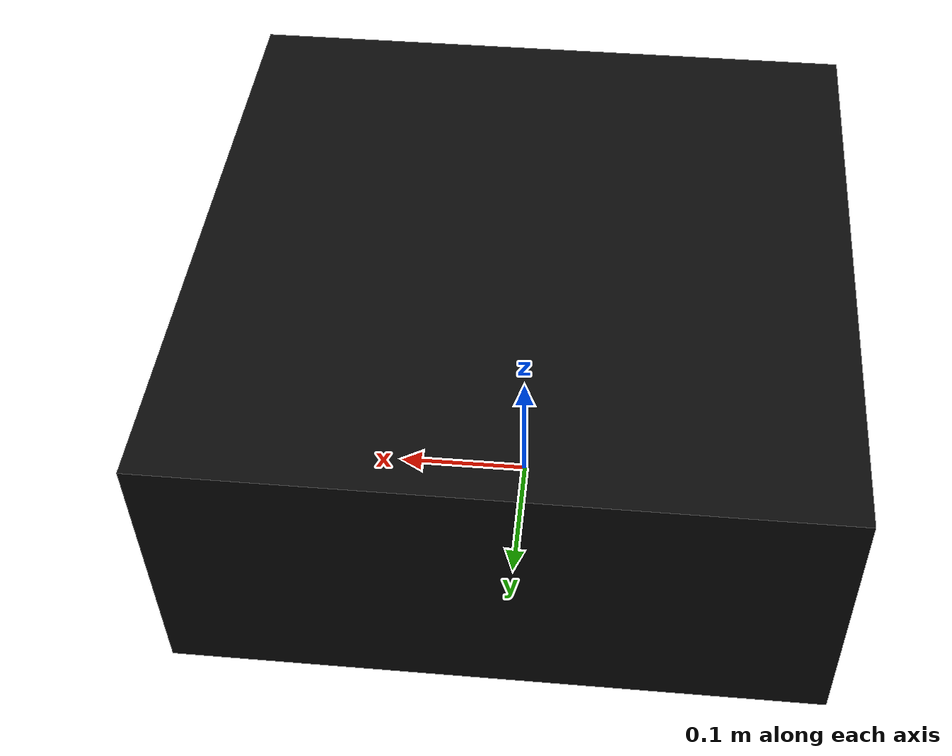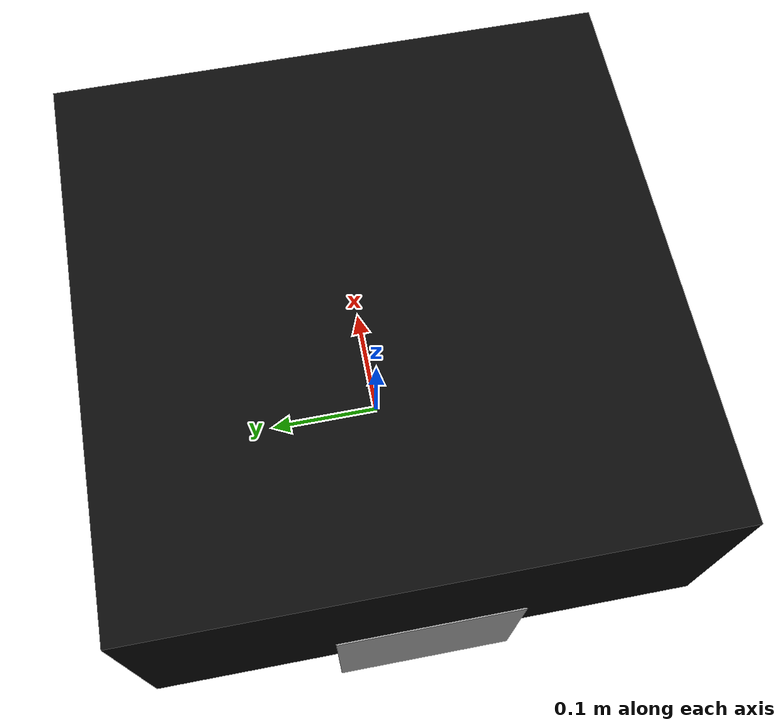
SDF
<?xml version="1.0" ?>
<sdf version="1.6">
  <model name="drona_lider">
    <static>false</static>
    <pose>0 0 0 0 0 0</pose>

    <link name="base_link">
      <pose>0 0 0.15 0 0 0</pose>
      <inertial>
        <mass>4.58</mass>
        <inertia>
          <ixx>0.085</ixx><ixy>0.0</ixy><ixz>0.0</ixz>
          <iyy>0.085</iyy><iyz>0.0</iyz><izz>0.155</izz>
        </inertia>
      </inertial>

      <collision name="collision"><geometry><box><size>0.45 0.45 0.20</size></box></geometry></collision>
      <visual name="visual"><geometry><box><size>0.45 0.45 0.20</size></box></geometry>
        <material><ambient>0.05 0.05 0.05 1</ambient><diffuse>0.05 0.05 0.05 1</diffuse></material>
      </visual>
      <gravity>false</gravity>

      <sensor type="gpu_ray" name="livox_3d_sensor">
        <pose>0 0 0.12 0 0 0</pose>
        <visualize>false</visualize>
        <update_rate>10</update_rate>
        <ray>
          <scan>
            <horizontal><samples>360</samples><resolution>1</resolution><min_angle>-3.14159</min_angle><max_angle>3.14159</max_angle></horizontal>
            <vertical><samples>32</samples><resolution>1</resolution><min_angle>-0.122173</min_angle><max_angle>0.907571</max_angle></vertical>
          </scan>
          <range><min>0.1</min><max>40.0</max><resolution>0.01</resolution></range>
        </ray>
        <plugin name="gazebo_ros_3d_lidar_controller" filename="libgazebo_ros_velodyne_gpu_laser.so">
          <topicName>/velodyne_points</topicName>
          <frameName>velodyne_link</frameName>
          <min_range>0.1</min_range><max_range>40.0</max_range>
        </plugin>
      </sensor>

      <sensor type="ray" name="lidar_2d_reflex">
        <pose>0 0 0.18 0 0 0</pose>
        <visualize>true</visualize>
        <update_rate>40</update_rate>
        <ray>
          <scan><horizontal><samples>360</samples><resolution>1</resolution><min_angle>-3.14159</min_angle><max_angle>3.14159</max_angle></horizontal></scan>
          <range><min>0.2</min><max>25.0</max><resolution>0.01</resolution></range>
        </ray>
        <plugin name="gazebo_ros_laser_controller" filename="libgazebo_ros_laser.so">
          <topicName>/scan_reflex_lider</topicName>
          <frameName>base_link</frameName>
        </plugin>
      </sensor>

      <sensor type="ray" name="altimetru_1d">
        <pose>0 0 -0.11 0 1.5707 0</pose>
        <visualize>true</visualize>
        <update_rate>20</update_rate>
        <ray>
          <scan><horizontal><samples>1</samples><resolution>1</resolution><min_angle>-0.001</min_angle><max_angle>0.001</max_angle></horizontal></scan>
          <range><min>0.05</min><max>14.0</max><resolution>0.01</resolution></range>
        </ray>
        <plugin name="gazebo_ros_range_controller" filename="libgazebo_ros_range.so">
          <topicName>/altitudine_sol</topicName>
          <frameName>base_link</frameName>
          <radiation>ultrasound</radiation><fov>0.05</fov>
        </plugin>
      </sensor>
    </link>

    <link name="camera_link">
      <gravity>false</gravity>
      <pose>0.18 0 0.05 0 0 0</pose>
      <visual name="camera_visual"><geometry><box><size>0.03 0.12 0.03</size></box></geometry><material><ambient>0.1 0.1 0.1 1</ambient></material></visual>
      <sensor type="depth" name="oakd_pro_stereo">
        <update_rate>30.0</update_rate>
        <camera name="head">
          <horizontal_fov>1.25664</horizontal_fov>
          <image><width>1280</width><height>720</height><format>R8G8B8</format></image>
          <clip><near>0.1</near><far>20.0</far></clip>
        </camera>
        <plugin name="stereo_camera_controller" filename="libgazebo_ros_openni_kinect.so">
          <alwaysOn>true</alwaysOn><updateRate>30.0</updateRate>
          <cameraName>camera_stereo_lider</cameraName>
          <imageTopicName>color/image_raw</imageTopicName>
          <depthImageTopicName>depth/image_raw</depthImageTopicName>
          <pointCloudTopicName>depth/points</pointCloudTopicName>
          <cameraInfoTopicName>color/camera_info</cameraInfoTopicName>
          <depthImageCameraInfoTopicName>depth/camera_info</depthImageCameraInfoTopicName>
          <frameName>camera_link</frameName>
          <pointCloudCutoff>0.2</pointCloudCutoff>
          <pointCloudCutoffMax>20.0</pointCloudCutoffMax>
        </plugin>
      </sensor>
    </link>
    <joint name="camera_joint" type="fixed"><parent>base_link</parent><child>camera_link</child></joint>

    <link name="aruco_marker_link">
      <pose>-0.23 0 0.05 0 1.5707 0</pose>
      <gravity>false</gravity>
      <visual name="aruco_visual">
        <geometry><box><size>0.15 0.15 0.001</size></box></geometry>
      </visual>
    </link>
    <joint name="aruco_joint" type="fixed"><parent>base_link</parent><child>aruco_marker_link</child></joint>

    <plugin name="object_controller" filename="libgazebo_ros_planar_move.so">
      <commandTopic>cmd_vel</commandTopic>
      <odometryTopic>odom</odometryTopic>
      <odometryFrame>odom</odometryFrame>
      <odometryRate>50.0</odometryRate>
      <robotBaseFrame>base_link</robotBaseFrame>
      <cmdTimeout>0.5</cmdTimeout>
    </plugin>
  </model>
</sdf>
